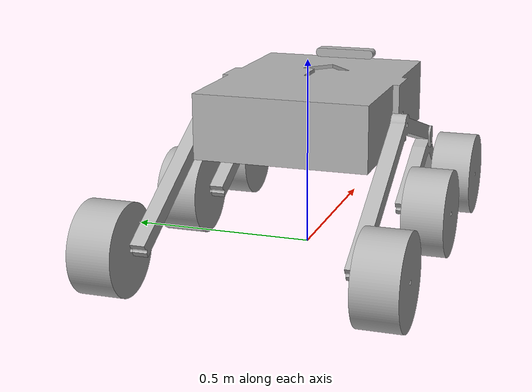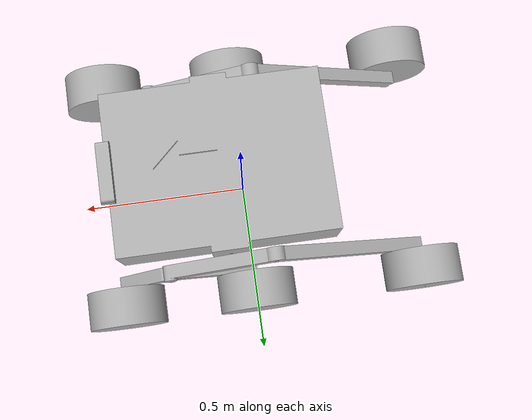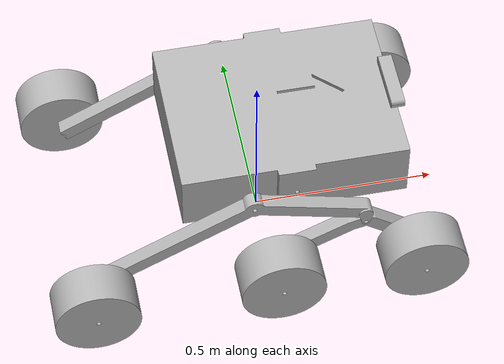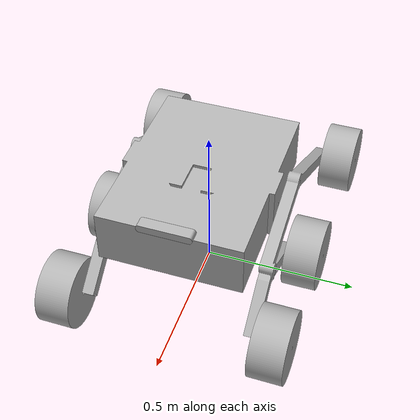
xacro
<?xml version="1.0" ?>
<robot name="robot" xmlns:xacro="http://www.ros.org/wiki/xacro" >
    <xacro:arg name="use_sim" default="true"/>
    <xacro:property name="use_sim" value="$(arg use_sim)"/>

    <xacro:include filename="robot_core.urdf.xacro"/>
    <xacro:include filename="robot_gz.urdf.xacro"/>
    <xacro:include filename="camera.urdf.xacro"/>
    <xacro:include filename="gps.urdf.xacro"/>
    <xacro:include filename="ros2_control.urdf.xacro"/>
</robot>

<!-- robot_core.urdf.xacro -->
<robot xmlns:xacro="http://www.ros.org/wiki/xacro" >
  <material name="silver">
    <color rgba="0.700 0.700 0.700 1.000"/>
  </material>
  <!--xacro:include filename="$(find chassis_description)/urdf/chassis_model.trans" /-->
  <!--xacro:include filename="$(find chassis_description)/urdf/chassis_model.gazebo" /-->
  <!-- New dummy root link with no inertia so KDL as a root node w/ no inertia while base_link still keeps physics intact-->
  <link name="base_footprint"/>
  <joint name="dummy_joint" type="fixed">
    <parent link="base_footprint"/>
    <child link="base_link"/>
    <origin rpy="0.0 0.0 0.0" xyz="0 0 0.115"/>
  </joint>
  <link name="base_link">
    <inertial>
      <origin rpy="0 0 0" xyz="-0.0597906904116671 4.957188589394069e-17 0.2438059656754355"/>
      <mass value="368.7010327977625"/>
      <inertia ixx="7.357137" ixy="-0.0" ixz="-0.006189" iyy="12.009665" iyz="-0.0" izz="17.59793"/>
    </inertial>
    <visual>
      <origin rpy="0 0 ${pi}" xyz="0.3624 0 0.244"/>
      <geometry>
        <mesh filename="package://robot_description/meshes/base_link.stl" scale="0.001 0.001 0.001"/>
      </geometry>
      <material name="silver"/>
    </visual>
    <collision>
      <origin rpy="0 0 ${pi}" xyz="0.3624 0 0.244"/>
      <geometry>
        <mesh filename="package://robot_description/meshes/base_link.stl" scale="0.001 0.001 0.001"/>
      </geometry>
    </collision>
  </link>
  <link name="suspension_1_right_1">
    <inertial>
      <origin rpy="0 0 0" xyz="-0.06679854886170258 -0.019220268351824554 -0.09147358690967579"/>
      <mass value="9.626869069556502"/>
      <inertia ixx="0.046767" ixy="0.000601" ixz="-0.104319" iyy="0.499696" iyz="-1.3e-05" izz="0.455312"/>
    </inertial>
    <visual>
      <origin rpy="0 0 0" xyz="-0.3024 0.243025 -0.0"/>
      <geometry>
        <mesh filename="package://robot_description/meshes/suspension_1_left_1.stl" scale="0.001 0.001 0.001"/>
      </geometry>
      <material name="silver"/>
    </visual>
    <collision>
      <origin rpy="0 0 0" xyz="-0.3024 0.243025 -0.0"/>
      <geometry>
        <mesh filename="package://robot_description/meshes/suspension_1_left_1.stl" scale="0.001 0.001 0.001"/>
      </geometry>
    </collision>
  </link>
  <link name="suspension_1_left_1">
    <inertial>
      <origin rpy="0 0 0" xyz="-0.06679854886170233 0.019220268351824554 -0.09147358690967583"/>
      <mass value="9.626869069556493"/>
      <inertia ixx="0.046767" ixy="-0.000601" ixz="-0.104319" iyy="0.499696" iyz="1.3e-05" izz="0.455312"/>
    </inertial>
    <visual>
      <origin rpy="0 0 0" xyz="-0.3024 -0.243025 -0.0"/>
      <geometry>
        <mesh filename="package://robot_description/meshes/suspension_1_right_1.stl" scale="0.001 0.001 0.001"/>
      </geometry>
      <material name="silver"/>
    </visual>
    <collision>
      <origin rpy="0 0 0" xyz="-0.3024 -0.243025 -0.0"/>
      <geometry>
        <mesh filename="package://robot_description/meshes/suspension_1_right_1.stl" scale="0.001 0.001 0.001"/>
      </geometry>
    </collision>
  </link>
  <link name="suspension_2_right_1">
    <inertial>
      <origin rpy="0 0 0" xyz="-0.039308541684192844 0.019050000000000067 -0.062225074163904326"/>
      <mass value="5.109936689304592"/>
      <inertia ixx="0.006956" ixy="0.0" ixz="-0.003812" iyy="0.072697" iyz="0.0" izz="0.066977"/>
    </inertial>
    <visual>
      <origin rpy="0 0 0" xyz="-0.6024 0.281125 0.122"/>
      <geometry>
        <mesh filename="package://robot_description/meshes/suspension_2_left_1.stl" scale="0.001 0.001 0.001"/>
      </geometry>
      <material name="silver"/>
    </visual>
    <collision>
      <origin rpy="0 0 0" xyz="-0.6024 0.281125 0.122"/>
      <geometry>
        <mesh filename="package://robot_description/meshes/suspension_2_left_1.stl" scale="0.001 0.001 0.001"/>
      </geometry>
    </collision>
  </link>
  <link name="suspension_2_left_1">
    <inertial>
      <origin rpy="0 0 0" xyz="-0.03930854168419273 -0.019050000000000122 -0.06222507416390427"/>
      <mass value="5.10993668930459"/>
      <inertia ixx="0.006956" ixy="-0.0" ixz="-0.003812" iyy="0.072697" iyz="0.0" izz="0.066977"/>
    </inertial>
    <visual>
      <origin rpy="0 0 0" xyz="-0.6024 -0.281125 0.122"/>
      <geometry>
        <mesh filename="package://robot_description/meshes/suspension_2_right_1.stl" scale="0.001 0.001 0.001"/>
      </geometry>
      <material name="silver"/>
    </visual>
    <collision>
      <origin rpy="0 0 0" xyz="-0.6024 -0.281125 0.122"/>
      <geometry>
        <mesh filename="package://robot_description/meshes/suspension_2_right_1.stl" scale="0.001 0.001 0.001"/>
      </geometry>
    </collision>
  </link>
  <link name="wheel_r_3">
    <inertial>
      <origin rpy="0 0 0" xyz="-1.4432899320127035e-15 -0.05499999999999988 3.608224830031759e-16"/>
      <mass value="35.77866096632706"/>
      <inertia ixx="0.154692" ixy="-0.0" ixz="0.0" iyy="0.23723" iyz="-0.0" izz="0.154692"/>
    </inertial>
    <visual>
      <origin rpy="0 0 0" xyz="-0.7524 0.281125 0.244"/>
      <geometry>
        <mesh filename="package://robot_description/meshes/wheel_3.stl" scale="0.001 0.001 0.001"/>
      </geometry>
      <material name="silver"/>
    </visual>
    <collision>
      <origin rpy="0 0 0" xyz="-0.7524 0.281125 0.244"/>
      <geometry>
        <mesh filename="package://robot_description/meshes/wheel_3.stl" scale="0.001 0.001 0.001"/>
      </geometry>
    </collision>
  </link>
  <link name="wheel_r_2">
    <inertial>
      <origin rpy="0 0 0" xyz="-1.609823385706477e-15 -0.05499999999999988 1.3877787807814457e-16"/>
      <mass value="35.77866096632706"/>
      <inertia ixx="0.154692" ixy="0.0" ixz="0.0" iyy="0.23723" iyz="-0.0" izz="0.154692"/>
    </inertial>
    <visual>
      <origin rpy="0 0 0" xyz="-0.3624 0.281125 0.244"/>
      <geometry>
        <mesh filename="package://robot_description/meshes/wheel_2.stl" scale="0.001 0.001 0.001"/>
      </geometry>
      <material name="silver"/>
    </visual>
    <collision>
      <origin rpy="0 0 0" xyz="-0.3624 0.281125 0.244"/>
      <geometry>
        <mesh filename="package://robot_description/meshes/wheel_2.stl" scale="0.001 0.001 0.001"/>
      </geometry>
    </collision>
  </link>
  <link name="wheel_r_1">
    <inertial>
      <origin rpy="0 0 0" xyz="-1.7208456881689926e-15 -0.05499999999999988 1.1102230246251565e-16"/>
      <mass value="35.77866096632706"/>
      <inertia ixx="0.154692" ixy="-0.0" ixz="0.0" iyy="0.23723" iyz="-0.0" izz="0.154692"/>
    </inertial>
    <visual>
      <origin rpy="0 0 0" xyz="0.1376 0.281125 0.244"/>
      <geometry>
        <mesh filename="package://robot_description/meshes/wheel_1.stl" scale="0.001 0.001 0.001"/>
      </geometry>
      <material name="silver"/>
    </visual>
    <collision>
      <origin rpy="0 0 0" xyz="0.1376 0.281125 0.244"/>
      <geometry>
        <mesh filename="package://robot_description/meshes/wheel_1.stl" scale="0.001 0.001 0.001"/>
      </geometry>
    </collision>
  </link>
  <link name="wheel_1">
    <inertial>
      <origin rpy="0 0 0" xyz="-1.7208456881689926e-15 0.05499999999999988 1.942890293094024e-16"/>
      <mass value="35.77866096632706"/>
      <inertia ixx="0.154692" ixy="0.0" ixz="0.0" iyy="0.23723" iyz="0.0" izz="0.154692"/>
    </inertial>
    <visual>
      <origin rpy="0 0 0" xyz="0.1376 -0.281125 0.244"/>
      <geometry>
        <mesh filename="package://robot_description/meshes/wheel_r_1.stl" scale="0.001 0.001 0.001"/>
      </geometry>
      <material name="silver"/>
    </visual>
    <collision>
      <origin rpy="0 0 0" xyz="0.1376 -0.281125 0.244"/>
      <geometry>
        <mesh filename="package://robot_description/meshes/wheel_r_1.stl" scale="0.001 0.001 0.001"/>
      </geometry>
    </collision>
  </link>
  <link name="wheel_2">
    <inertial>
      <origin rpy="0 0 0" xyz="-1.609823385706477e-15 0.05499999999999988 2.220446049250313e-16"/>
      <mass value="35.77866096632706"/>
      <inertia ixx="0.154692" ixy="-0.0" ixz="0.0" iyy="0.23723" iyz="0.0" izz="0.154692"/>
    </inertial>
    <visual>
      <origin rpy="0 0 0" xyz="-0.3624 -0.281125 0.244"/>
      <geometry>
        <mesh filename="package://robot_description/meshes/wheel_r_2.stl" scale="0.001 0.001 0.001"/>
      </geometry>
      <material name="silver"/>
    </visual>
    <collision>
      <origin rpy="0 0 0" xyz="-0.3624 -0.281125 0.244"/>
      <geometry>
        <mesh filename="package://robot_description/meshes/wheel_r_2.stl" scale="0.001 0.001 0.001"/>
      </geometry>
    </collision>
  </link>
  <link name="wheel_3">
    <inertial>
      <origin rpy="0 0 0" xyz="-1.4432899320127035e-15 0.05499999999999988 4.440892098500626e-16"/>
      <mass value="35.77866096632706"/>
      <inertia ixx="0.154692" ixy="0.0" ixz="0.0" iyy="0.23723" iyz="0.0" izz="0.154692"/>
    </inertial>
    <visual>
      <origin rpy="0 0 0" xyz="-0.7524 -0.281125 0.244"/>
      <geometry>
        <mesh filename="package://robot_description/meshes/wheel_r_3.stl" scale="0.001 0.001 0.001"/>
      </geometry>
      <material name="silver"/>
    </visual>
    <collision>
      <origin rpy="0 0 0" xyz="-0.7524 -0.281125 0.244"/>
      <geometry>
        <mesh filename="package://robot_description/meshes/wheel_r_3.stl" scale="0.001 0.001 0.001"/>
      </geometry>
    </collision>
  </link>
  <joint name="Revolute 1" type="fixed">
    <origin rpy="0 0 0" xyz="-0.06 -0.243025 0.244"/>
    <parent link="base_link"/>
    <child link="suspension_1_right_1"/>
    <axis xyz="0.0 1.0 0.0"/>
  </joint>
  <joint name="Revolute 2" type="fixed">
    <origin rpy="0 0 0" xyz="-0.06 0.243025 0.244"/>
    <parent link="base_link"/>
    <child link="suspension_1_left_1"/>
    <axis xyz="0.0 1.0 0.0"/>
  </joint>
  <joint name="Revolute 3" type="fixed">
    <origin rpy="0 0 0" xyz="0.3 -0.0381 -0.122"/>
    <parent link="suspension_1_right_1"/>
    <child link="suspension_2_right_1"/>
    <axis xyz="0.0 1.0 0.0"/>
  </joint>
  <joint name="Revolute 4" type="fixed">
    <origin rpy="0 0 0" xyz="0.3 0.0381 -0.122"/>
    <parent link="suspension_1_left_1"/>
    <child link="suspension_2_left_1"/>
    <axis xyz="0.0 -1.0 0.0"/>
  </joint>
  <joint name="joint_wheel_r1" type="continuous">
    <origin rpy="0 0 0" xyz="0.15 0.0 -0.122"/>
    <parent link="suspension_2_right_1"/>
    <child link="wheel_r_3"/>
    <axis xyz="0.0 1.0 0.0"/>
  </joint>
  <joint name="joint_wheel_r2" type="continuous">
    <origin rpy="0 0 0" xyz="-0.24 0.0 -0.122"/>
    <parent link="suspension_2_right_1"/>
    <child link="wheel_r_2"/>
    <axis xyz="0.0 1.0 0.0"/>
  </joint>
  <joint name="joint_wheel_r3" type="continuous">
    <origin rpy="0 0 0" xyz="-0.44 -0.0381 -0.244"/>
    <parent link="suspension_1_right_1"/>
    <child link="wheel_r_1"/>
    <axis xyz="0.0 1.0 0.0"/>
  </joint>
  <joint name="joint_wheel_l1" type="continuous">
    <origin rpy="0 0 0" xyz="-0.44 0.0381 -0.244"/>
    <parent link="suspension_1_left_1"/>
    <child link="wheel_1"/>
    <axis xyz="0.0 1.0 0.0"/>
  </joint>
  <joint name="joint_wheel_l2" type="continuous">
    <origin rpy="0 0 0" xyz="-0.24 0.0 -0.122"/>
    <parent link="suspension_2_left_1"/>
    <child link="wheel_2"/>
    <axis xyz="0.0 1.0 0.0"/>
  </joint>
  <joint name="joint_wheel_l3" type="continuous">
    <origin rpy="0 0 0" xyz="0.15 0.0 -0.122"/>
    <parent link="suspension_2_left_1"/>
    <child link="wheel_3"/>
    <axis xyz="0.0 1.0 0.0"/>
  </joint>

</robot>

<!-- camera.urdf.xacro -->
<robot name="rover">
        <joint name="camera_joint" type="fixed">
            <parent link="base_link"/>
            <child link="camera_link"/>
            <origin xyz="0.3624 0.0 0.3424" rpy="0.0 0.0 0.0"/>
        </joint>
        <joint name="camera_optical_joint" type="fixed">
            <parent link="camera_link"/>
            <child link="camera_link_optical"/>
            <origin xyz="0.0 0.0 0.0" rpy="${-pi/2} 0.0 ${-pi/2}"/>
        </joint>

        <link name="camera_link">
            <visual>
                    <origin xyz="0.0 0.0 0.0" rpy="0 0 ${pi/2}"/>
                    <geometry>
                        <mesh filename="package://robot_description/meshes/zed2i.stl" scale="1.0 1.0 1.0"/>
                        <!--box size=".0303 .1753 0.0431"/!-->
                    </geometry>
                    <material name="silver">
                    </material>
            </visual>
        </link>

        <link name="camera_link_optical"/>
</robot>

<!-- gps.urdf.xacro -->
<robot name="rover">
    <joint name="gps_joint" type="fixed">
      <parent link="base_link"/>
      <child link="gps_link"/>
      <!-- TODO: placeholder (centered over base_link, above the camera); replace with the measured antenna mount -->
      <origin xyz="0 0 0.4" rpy="0 0 0"/>
    </joint>
    <link name="gps_link"/>

</robot>
